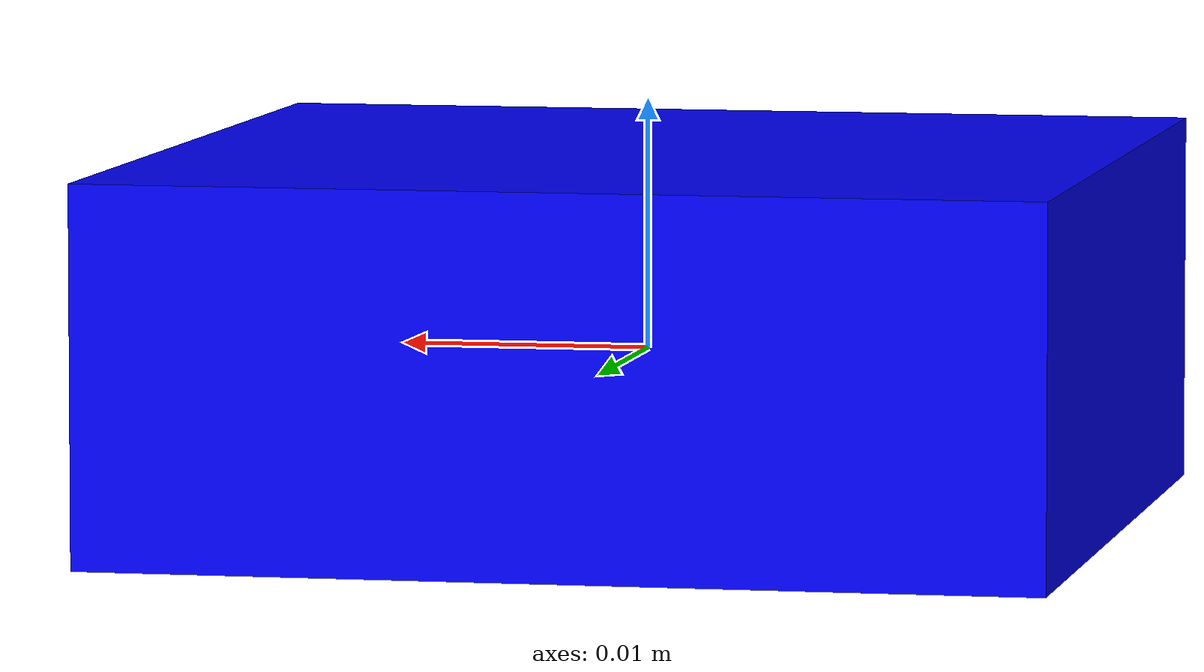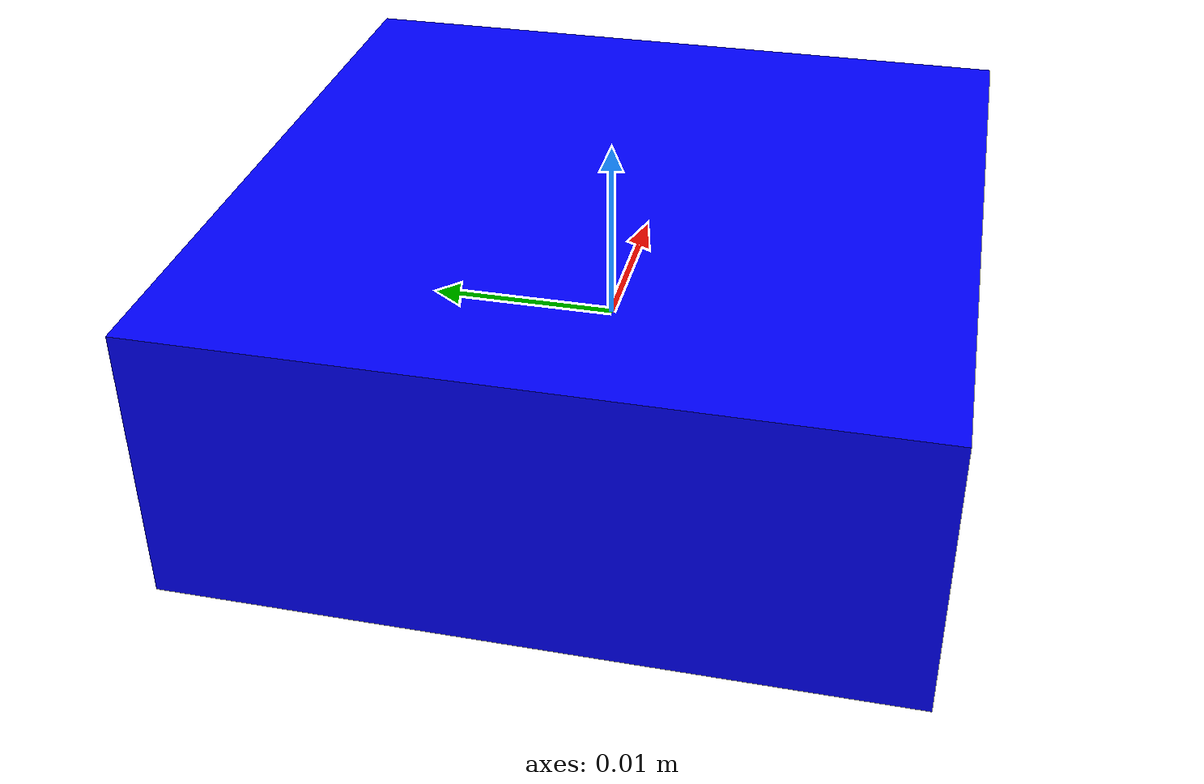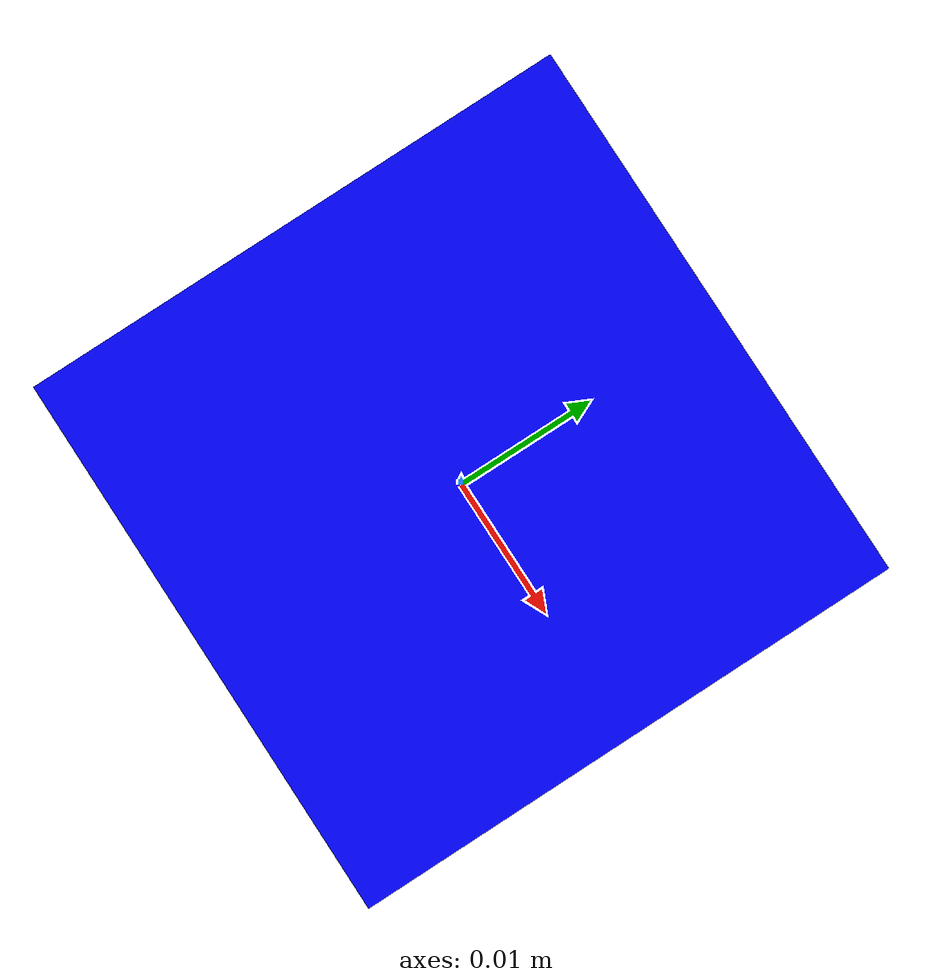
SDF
<?xml version="1.0" ?>
<sdf version="1.5">
  <model name="carre_bleu">
    <static>false</static>
    <link name="link">
      <pose>0 0 0 0 0 0</pose>
      <collision name="collision">
        <geometry>
          <mesh>
            <uri>model://carre_bleu/meshes/carre_bleu.dae</uri>
          </mesh>
        </geometry>
      </collision>
      <visual name="visual">
        <geometry>
          <mesh>
            <uri>model://carre_bleu/meshes/carre_bleu.dae</uri>
          </mesh>
        </geometry>
        <material>

        </material>
      </visual>
      <inertial>
        <mass>0.018</mass>
        <inertia> <!-- inertias are tricky to compute -->
          <!-- http://gazebosim.org/tutorials?tut=inertia&cat=build_robot -->
          <ixx>1.7e-6</ixx>       <!-- for a box: ixx = 0.083 * mass * (y*y + z*z) -->
          <ixy>0.0</ixy>         <!-- for a box: ixy = 0 -->
          <ixz>0.0</ixz>         <!-- for a box: ixz = 0 -->
          <iyy>1.7e-6</iyy>       <!-- for a box: iyy = 0.083 * mass * (x*x + z*z) -->
          <iyz>0.0</iyz>         <!-- for a box: iyz = 0 -->
          <izz>2.9e-6</izz>       <!-- for a box: izz = 0.083 * mass * (x*x + y*y) -->
        </inertia>
      </inertial>
    </link>
  </model>
</sdf>
